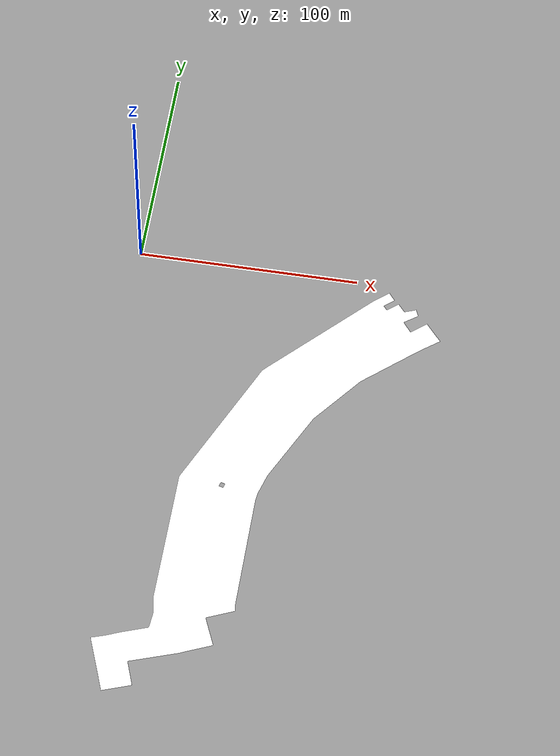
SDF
<?xml version='1.0' encoding='utf-8'?>
<sdf version="1.7">
  <model name="map_elettra_floor2">
    <static>true</static>
    <link name="floor_1">
      <visual name="visual">
        <geometry>
          <mesh>
            <uri>model://map_elettra_floor2/meshes/floor_1.obj</uri>
          </mesh>
        </geometry>
        <material>
          <diffuse>1.0 1.0 1.0</diffuse>
          <specular>0.1 0.1 0.1</specular>
          <pbr>
            <metal>
              <metalness>0.0</metalness>
              <albedo_map>model://map_elettra_floor2/meshes/blue_linoleum.png</albedo_map>
            </metal>
          </pbr>
          <script>
            <uri>model://map_elettra_floor2/meshes/</uri>
            <name>floor_1_Diffuse</name>
          </script>
        </material>
      </visual>
      <collision name="collision">
        <geometry>
          <mesh>
            <uri>model://map_elettra_floor2/meshes/floor_1.obj</uri>
          </mesh>
        </geometry>
        <surface>
          <contact>
            <collide_bitmask>0x01</collide_bitmask>
          </contact>
        </surface>
      </collision>
    </link>
    <link name="wall_1">
      <visual name="wall_1">
        <geometry>
          <mesh>
            <uri>model://map_elettra_floor2/meshes/wall_1.obj</uri>
          </mesh>
        </geometry>
        <transparency>0.0</transparency>
        <material>
          <diffuse>1.0 1.0 1.0</diffuse>
          <specular>0.1 0.1 0.1</specular>
          <pbr>
            <metal>
              <metalness>0.0</metalness>
              <albedo_map>model://map_elettra_floor2/meshes/default.png</albedo_map>
            </metal>
          </pbr>
          <script>
            <uri>model://map_elettra_floor2/meshes/</uri>
            <name>wall_1_Diffuse</name>
          </script>
        </material>
      </visual>
      <collision name="collision">
        <geometry>
          <mesh>
            <uri>model://map_elettra_floor2/meshes/wall_1.obj</uri>
          </mesh>
        </geometry>
        <surface>
          <contact>
            <collide_bitmask>0x01</collide_bitmask>
          </contact>
        </surface>
      </collision>
      <pose>502.15491777676704 -1877.2936726031658 0 0 0 0</pose>
    </link>
  </model>
</sdf>
